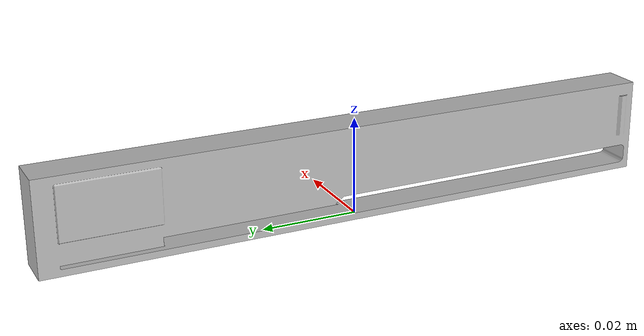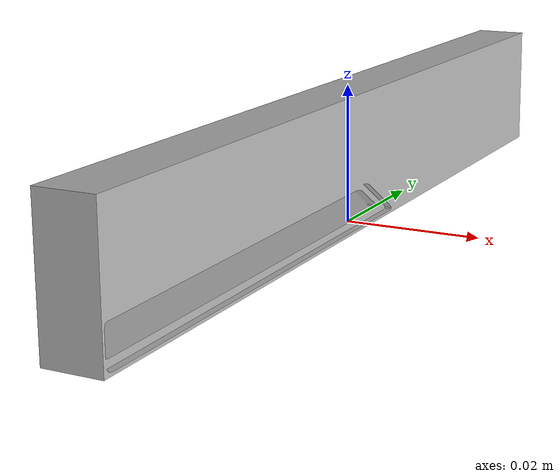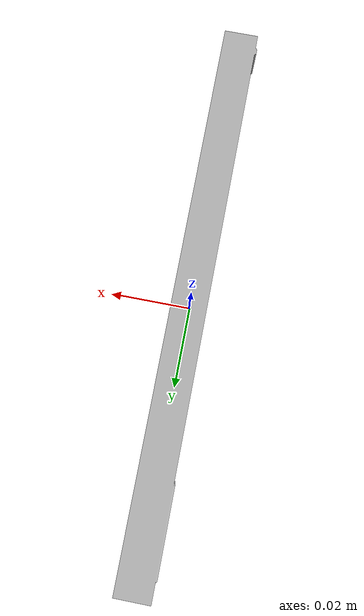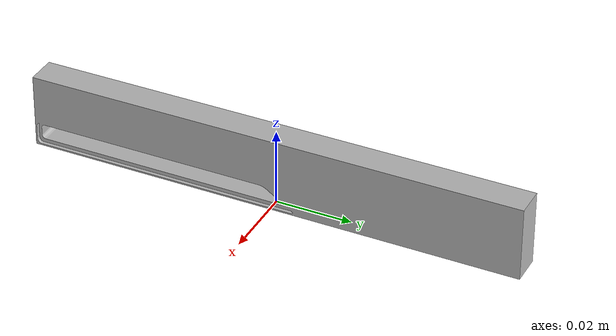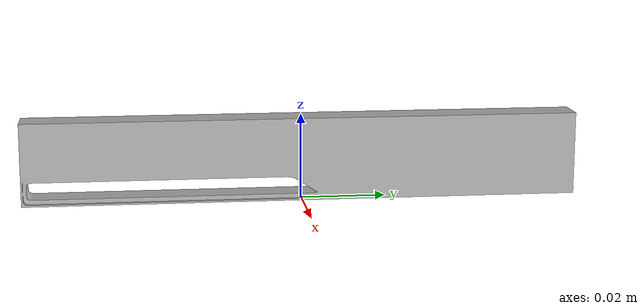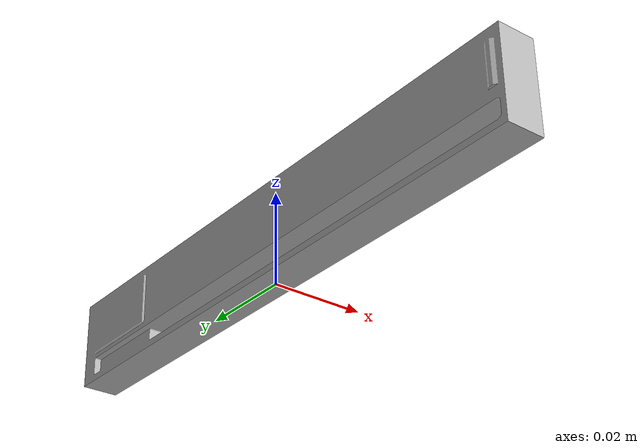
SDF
<?xml version="1.0" ?>
<sdf version="1.6">
  <model name="intel_realsense_custom">
    <static>true</static>
    <pose>0 0 0.01 0 0 0</pose>
    <link name="link">
      <inertial>
        <mass>0.2</mass>
        <inertia>
          <ixx>0.00014395</ixx>
          <ixy>0</ixy>
          <ixz>0</ixz>
          <iyy>0.00000384</iyy>
          <iyz>0</iyz>
          <izz>0.00014136</izz>
        </inertia>
      </inertial>
      <collision name="collision">
        <geometry>
          <box>
            <size>0.008 0.13 0.02</size>
          </box>
        </geometry>
        <surface>
          <contact>
            <ode>
              <max_vel>0.1</max_vel>
              <min_depth>0.001</min_depth>
            </ode>
          </contact>
          <friction>
            <ode>
              <mu>0.4</mu>
              <mu2>0.4</mu2>
            </ode>
          </friction>
        </surface>
      </collision>
      <visual name="visual">
        <geometry>
          <mesh>
            <uri>model://intel_realsense_r200/meshes/realsense_r200.dae</uri>
          </mesh>
        </geometry>
      </visual>
      <sensor name="camera" type="depth">
        <pose>0.001 -0.045 0.003 0 0 0</pose>
        <update_rate>60</update_rate>
        <camera>
          <horizontal_fov>0.976899239</horizontal_fov>
          <image>
            <width>480</width>
            <height>360</height>
            <format>R8G8B8</format>
          </image>
          <clip>
            <near>0.5</near>
            <far>10</far>
          </clip>
        </camera>
        <plugin name="camera_plugin" filename="libgazebo_ros_openni_kinect.so">
          <baseline>0.2</baseline>
          <alwaysOn>true</alwaysOn>
          <updateRate>0.0</updateRate>
          <cameraName>camera_ir</cameraName>
          <imageTopicName>/camera/color/image_raw</imageTopicName>
          <cameraInfoTopicName>/camera/color/camera_info</cameraInfoTopicName>
          <depthImageTopicName>/camera/depth/image_raw</depthImageTopicName>
          <depthImageCameraInfoTopicName>/camera/depth/camera_info</depthImageCameraInfoTopicName>
          <pointCloudTopicName>/camera/depth/points</pointCloudTopicName>
          <frameName>camera_link</frameName>
          <pointCloudCutoff>0.5</pointCloudCutoff>
          <pointCloudCutoffMax>3.0</pointCloudCutoffMax>
          <distortionK1>0</distortionK1>
          <distortionK2>0</distortionK2>
          <distortionK3>0</distortionK3>
          <distortionT1>0</distortionT1>
          <distortionT2>0</distortionT2>
          <CxPrime>0</CxPrime>
          <Cx>0</Cx>
          <Cy>0</Cy>
          <focalLength>0</focalLength>
          <hackBaseline>0</hackBaseline>
        </plugin>
      </sensor>
    </link>
  </model>
</sdf>
